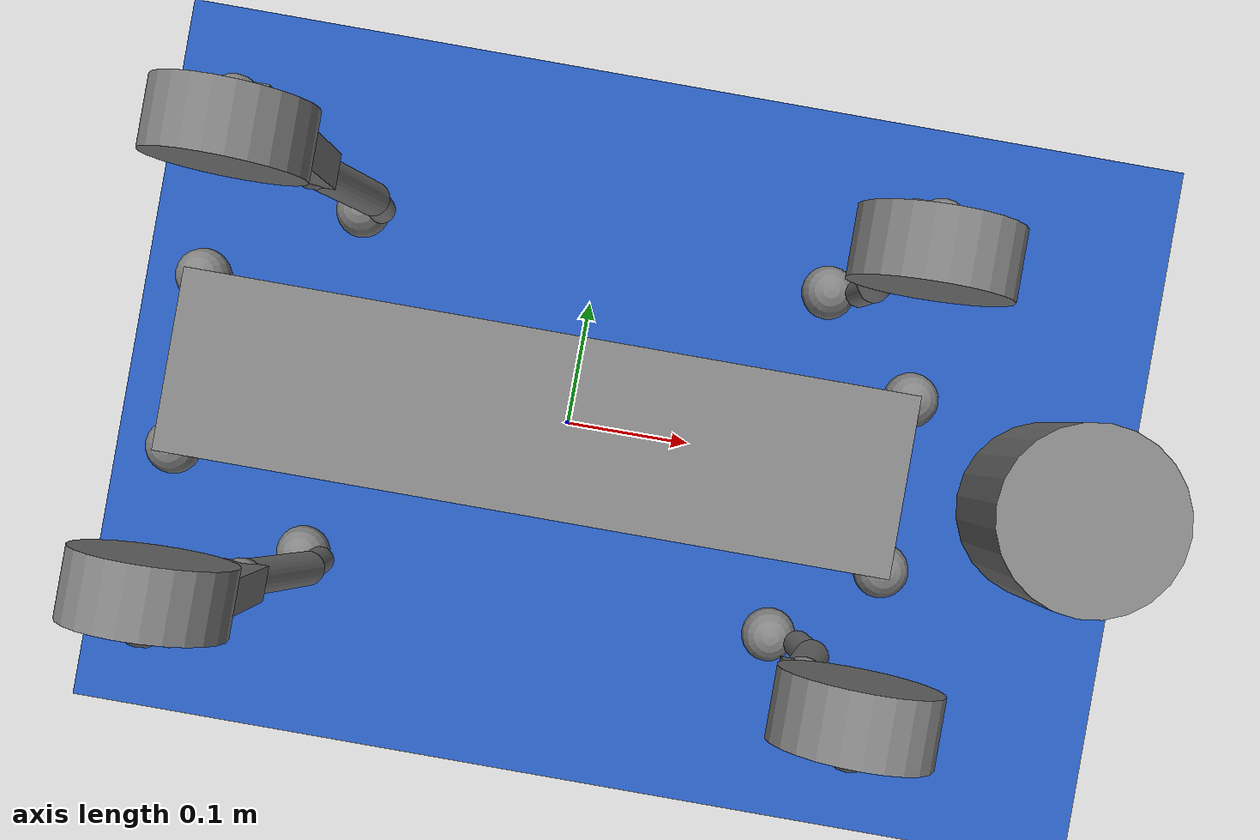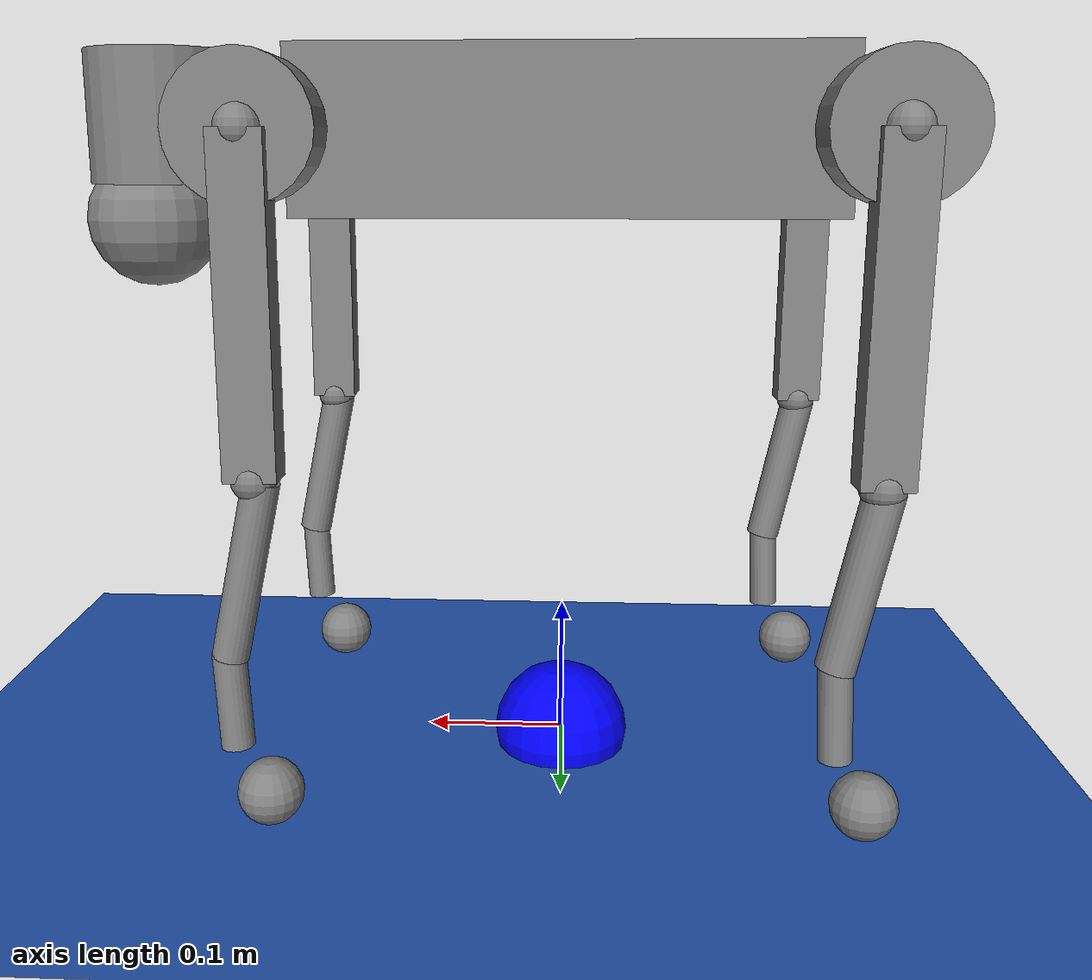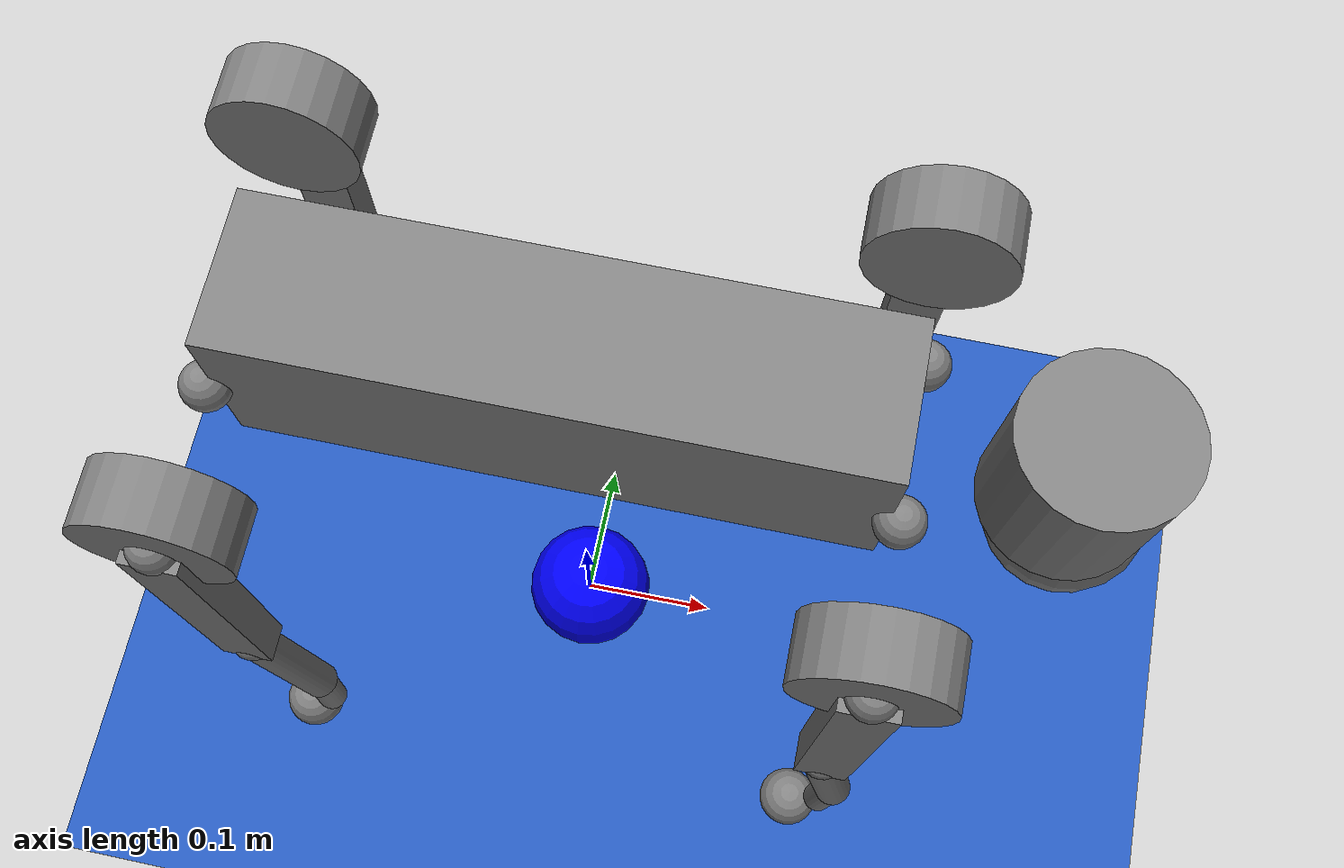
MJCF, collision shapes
<mujoco model="Quadruped">
    <include file="../../object/common.xml"/>

    <size memory="1M"/>

    <custom>
        <!-- agent -->
        <text name="task_transition" data="Stand"/>
        <numeric name="agent_planner" data="2 "/>
        <numeric name="agent_horizon" data="1.0"/>
        <numeric name="agent_timestep" data="0.01"/>
        <numeric name="sampling_spline_points" data="3"/>
        <numeric name="sampling_trajectories" data="60"/>
        <numeric name="sampling_exploration" data="0.04"/>
        <numeric name="gradient_spline_points" data="5"/>

        <!-- estimator -->
        <numeric name="estimator" data="0"/>
        <numeric name="estimator_sensor_start" data="9"/>
        <numeric name="estimator_number_sensor" data="21"/>
        <numeric name="estimator_timestep" data="0.005"/>
        <numeric name="batch_configuration_length" data="3"/>
        <numeric name="batch_scale_prior" data="1.0e-3"/>
    </custom>

    <visual>
        <headlight diffuse="0.6 0.6 0.6" ambient="0.3 0.3 0.3" specular="0 0 0"/>
        <global azimuth="-90"/>
    </visual>

    <statistic extent="1" center="0 0 .3"/>

    <worldbody>
        <light pos="0 0 1.5" dir="0 0 -1" diffuse="0.5 0.5 0.5" specular="0.3 0.3 0.3" directional="true"
               castshadow="false"/>
        <geom name="floor" size="0 0 0.1" pos="0 0 -0.01" type="plane" material="blue_grid"/>

        <body name="mocap[trunk]" mocap="true">
            <site name="mocap[trunk]" class="mocap_site" size="0.05"/>
        </body>
        <body name="mocap[head]" mocap="true">
            <site name="mocap[head]" class="mocap_site" size="0.05"/>
        </body>
        <body name="mocap[FR_hip]" mocap="true">
            <site name="mocap[FR_hip]" class="mocap_site"/>
        </body>
        <body name="mocap[FR_thigh]" mocap="true">
            <site name="mocap[FR_thigh]" class="mocap_site"/>
        </body>
        <body name="mocap[FR_calf]" mocap="true">
            <site name="mocap[FR_calf]" class="mocap_site"/>
        </body>
        <body name="mocap[FR_foot]" mocap="true">
            <site name="mocap[FR_foot]" class="mocap_site"/>
        </body>

        <body name="mocap[FL_hip]" mocap="true">
            <site name="mocap[FL_hip]" class="mocap_site"/>
        </body>
        <body name="mocap[FL_thigh]" mocap="true">
            <site name="mocap[FL_thigh]" class="mocap_site"/>
        </body>
        <body name="mocap[FL_calf]" mocap="true">
            <site name="mocap[FL_calf]" class="mocap_site"/>
        </body>
        <body name="mocap[FL_foot]" mocap="true">
            <site name="mocap[FL_foot]" class="mocap_site"/>
        </body>

        <body name="mocap[RR_hip]" mocap="true">
            <site name="mocap[RR_hip]" class="mocap_site"/>
        </body>
        <body name="mocap[RR_thigh]" mocap="true">
            <site name="mocap[RR_thigh]" class="mocap_site"/>
        </body>
        <body name="mocap[RR_calf]" mocap="true">
            <site name="mocap[RR_calf]" class="mocap_site"/>
        </body>
        <body name="mocap[RR_foot]" mocap="true">
            <site name="mocap[RR_foot]" class="mocap_site"/>
        </body>

        <body name="mocap[RL_hip]" mocap="true">
            <site name="mocap[RL_hip]" class="mocap_site"/>
        </body>
        <body name="mocap[RL_thigh]" mocap="true">
            <site name="mocap[RL_thigh]" class="mocap_site"/>
        </body>
        <body name="mocap[RL_calf]" mocap="true">
            <site name="mocap[RL_calf]" class="mocap_site"/>
        </body>
        <body name="mocap[RL_foot]" mocap="true">
            <site name="mocap[RL_foot]" class="mocap_site"/>
        </body>

    </worldbody>

    <default>
        <default class="mocap_site">
            <site type="sphere" size="0.027" rgba="0 0 1 1" group="2" material="target"/>
        </default>
        <default class="torque">
            <general gainprm="50" ctrllimited="true" ctrlrange="-1 1"/>
        </default>
        <default class="real_torque">
            <general gainprm="23.7" ctrllimited="true" ctrlrange="-1 1"/>
        </default>
        <default class="calf_torque">
            <general gainprm="45.43" ctrllimited="true" ctrlrange="-1 1"/>
        </default>
        <default class="task">
            <site rgba="1 0 0 1" size=".02" group="5"/>
        </default>
    </default>

    <include file="go2_motion.xml"/>

    <actuator>
        <general class="torque" name="FR_hip" joint="FR_hip_joint"/>
        <general class="torque" name="FR_thigh" joint="FR_thigh_joint"/>
        <general class="torque" name="FR_calf" joint="FR_calf_joint"/>
        <general class="torque" name="FL_hip" joint="FL_hip_joint"/>
        <general class="torque" name="FL_thigh" joint="FL_thigh_joint"/>
        <general class="torque" name="FL_calf" joint="FL_calf_joint"/>
        <general class="torque" name="RR_hip" joint="RR_hip_joint"/>
        <general class="torque" name="RR_thigh" joint="RR_thigh_joint"/>
        <general class="torque" name="RR_calf" joint="RR_calf_joint"/>
        <general class="torque" name="RL_hip" joint="RL_hip_joint"/>
        <general class="torque" name="RL_thigh" joint="RL_thigh_joint"/>
        <general class="torque" name="RL_calf" joint="RL_calf_joint"/>
    </actuator>

    <sensor>
        <user name="Qpos" dim="12" user="0 0 0 0 0 0 0 0 0 0 0 0" />
        <user name="FootHeight" dim="4" user="0 0 0 0" />
        <user name="Height" dim="1" user="0" />
        <user name="Position" dim="3" user="0 0 0" />
        <user name="Heading" dim="2" />
        <user name="YPR" dim="3" user="0 0 0" />
        <user name="Balance" dim="2"/>
        <user name="Effort" dim="12"/>
        <user name="Force" dim="1"/>

        <framepos      name="trace0" objtype="site" objname="head"/>
        <subtreecom    name="torso_subtreecom" body="trunk"/>
        <subtreelinvel name="torso_subtreelinvel" body="trunk"/>
    </sensor>

    <keyframe>
        <key name="home"
             qpos="0 0 0.26 1 0 0 0 -0.000341931 0.0181576 -0.0268335 0.00160968 0.0247957 -0.0270045 0.00191398 -0.033048 -0.0675298 -0.00199489 -0.0374747 -0.0681862"/>
    </keyframe>
</mujoco>

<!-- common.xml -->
<mujoco>

  <visual>
    <headlight ambient=".4 .4 .4" diffuse=".8 .8 .8" specular="0.1 0.1 0.1"/>
    <map znear=".01"/>
    <quality shadowsize="2048"/>
    <global elevation="-15"/>
  </visual>

  <asset>
    <texture name="blue_grid" type="2d" builtin="checker" rgb1=".02 .14 .44" rgb2=".27 .55 1" width="300" height="300" mark="edge" markrgb="1 1 1"/>
    <material name="blue_grid" texture="blue_grid" texrepeat="1 1" texuniform="true" reflectance=".2"/>

    <texture name="grey_grid" type="2d" builtin="checker" rgb1=".26 .26 .26" rgb2=".6 .6 .6" width="300" height="300" mark="edge" markrgb="1 1 1"/>
    <material name="grey_grid" texture="blue_grid" texrepeat="1 1" texuniform="true" reflectance=".2"/>
    <texture name="skybox" type="skybox" builtin="gradient" rgb1="1 1 1" rgb2="1 1 1" width="800" height="800"/>

    <material name="self" rgba=".7 .5 .3 1"/>
    <material name="self_default" rgba=".7 .5 .3 1"/>
    <material name="self_highlight" rgba="0 .5 .3 1"/>
    <material name="effector" rgba=".7 .4 .2 1"/>
    <material name="effector_default" rgba=".7 .4 .2 1"/>
    <material name="effector_highlight" rgba="0 .5 .3 1"/>
    <material name="decoration" rgba=".2 .6 .3 1"/>
    <material name="eye" rgba="0 .2 1 1"/>
    <material name="target" rgba=".6 .3 .3 1"/>
    <material name="target_default" rgba=".6 .3 .3 1"/>
    <material name="target_highlight" rgba=".6 .3 .3 .4"/>
    <material name="site" rgba=".5 .5 .5 .3"/>
  </asset>
</mujoco>

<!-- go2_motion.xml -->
<mujoco model="go2">
  <compiler angle="radian" meshdir="assets"/>

  <option cone="elliptic" impratio="10"/>

  <default>
    <default class="go2">
      <geom friction="0.6" margin="0.001" condim="1"/>
      <joint axis="0 1 0" damping="2" armature="0.01" frictionloss="0.2"/>
      <motor ctrlrange="-23.7 23.7"/>
      <default class="abduction">
        <joint axis="1 0 0" range="-1.0472 1.0472" limited="true"/>
      </default>
      <default class="hip">
        <default class="front_hip">
          <joint range="-2.4708 2.5907" ref="-0.9" limited="true"/>
        </default>
        <default class="back_hip">
          <joint range="-1.4236 3.6380" ref="-0.9" limited="true"/>
        </default>
      </default>
      <default class="knee">
        <joint range="-0.9227 0.9622" ref="1.8" limited="true"/>
        <motor ctrlrange="-45.43 45.43"/>
      </default>
      <default class="visual">
        <geom type="mesh" contype="0" conaffinity="0" group="2"/>
      </default>
      <default class="collision">
        <geom group="3"/>
        <default class="foot">
          <geom size="0.022" pos="-0.002 0 -0.213" priority="1" solimp="0.015 1 0.031" condim="6"
                friction="0.8 0.02 0.01"/>
        </default>
      </default>
    </default>
  </default>

  <asset>
    <material name="metal" rgba=".9 .95 .95 1"/>
    <material name="black" rgba="0 0 0 1"/>
    <material name="white" rgba="1 1 1 1"/>
    <material name="gray" rgba="0.671705 0.692426 0.774270 1"/>

    <mesh file="base_0.obj"/>
    <mesh file="base_1.obj"/>
    <mesh file="base_2.obj"/>
    <mesh file="base_3.obj"/>
    <mesh file="base_4.obj"/>
    <mesh file="hip_0.obj"/>
    <mesh file="hip_1.obj"/>
    <mesh file="thigh_0.obj"/>
    <mesh file="thigh_1.obj"/>
    <mesh file="thigh_mirror_0.obj"/>
    <mesh file="thigh_mirror_1.obj"/>
    <mesh file="calf_0.obj"/>
    <mesh file="calf_1.obj"/>
    <mesh file="calf_mirror_0.obj"/>
    <mesh file="calf_mirror_1.obj"/>
    <mesh file="foot.obj"/>
  </asset>

  <worldbody>
    <body name="trunk" pos="0 0 0.445" childclass="go2">
      <site name="trunk_site" type='sphere' size="0.03"/>
      <site name="head" pos="0.3 0 0" rgba="1 0 0 1" size="0.02" group="5"/>
      <inertial pos="0.021112 0 -0.005366" quat="-0.000543471 0.713435 -0.00173769 0.700719" mass="6.921"
                diaginertia="0.107027 0.0980771 0.0244531"/>
      <freejoint name="trunk"/>
      <geom mesh="base_0" material="black" class="visual"/>
      <geom mesh="base_1" material="black" class="visual"/>
      <geom mesh="base_2" material="black" class="visual"/>
      <geom mesh="base_3" material="white" class="visual"/>
      <geom mesh="base_4" material="gray" class="visual"/>
      <geom size="0.1881 0.04675 0.057" type="box" class="collision"/>
      <geom size="0.05 0.045" pos="0.285 0 0.01" type="cylinder" class="collision"/>
      <geom size="0.047" pos="0.293 0 -0.06" class="collision"/>
      <site name="imu" pos="-0.02557 0 0.04232"/>
      <body name="FR_hip" pos="0.1934 -0.0465 0">
        <site name="FR_hip_site" pos="0 0 0" type="sphere" size=".015"/>
        <inertial pos="-0.0054 -0.00194 -0.000105" quat="0.498237 0.505462 0.499245 0.497014" mass="0.678"
                  diaginertia="0.00088403 0.000596003 0.000479967"/>
        <joint name="FR_hip_joint" class="abduction"/>
        <geom mesh="hip_0" material="metal" class="visual" quat="4.63268e-05 1 0 0"/>
        <geom mesh="hip_1" material="gray" class="visual" quat="4.63268e-05 1 0 0"/>
        <geom size="0.046 0.02" pos="0 -0.08 0" quat="0.707107 0.707107 0 0" type="cylinder" class="collision"/>
        <body name="FR_thigh" pos="0 -0.0955 0">
          <site name="FR_thigh_site" pos="0 0 0" type="sphere" size=".015"/>
          <inertial pos="-0.00374 0.0223 -0.0327" quat="0.551623 -0.0200632 0.0847635 0.829533" mass="1.152"
                    diaginertia="0.00594973 0.00584149 0.000878787"/>
          <joint name="FR_thigh_joint" class="front_hip"/>
          <geom mesh="thigh_mirror_0" material="metal" class="visual"/>
          <geom mesh="thigh_mirror_1" material="gray" class="visual"/>
          <geom size="0.1065 0.01225 0.017" pos="0 0 -0.1065" quat="0.707107 0 0.707107 0" type="box" class="collision"/>
          <body name="FR_calf" pos="0 0 -0.213">
            <site name="FR_calf_site" pos="0 0 0" type="sphere" size=".015"/>
            <inertial pos="0.00629595 0.000622121 -0.141417" quat="0.703508 -0.00450087 0.00154099 0.710672"
                      mass="0.241352" diaginertia="0.0014901 0.00146356 5.31397e-05"/>
            <joint name="FR_calf_joint" class="knee"/>
            <geom mesh="calf_mirror_0" material="gray" class="visual"/>
            <geom mesh="calf_mirror_1" material="black" class="visual"/>
            <geom size="0.013 0.06" pos="0.01 0 -0.06" quat="0.995004 0 -0.0998334 0" type="cylinder" class="collision"/>
            <geom size="0.011 0.0325" pos="0.02 0 -0.148" quat="0.999688 0 0.0249974 0" type="cylinder" class="collision"/>
            <geom pos="0 0 -0.213" mesh="foot" class="visual" material="black"/>
            <geom name="FR_foot" class="foot"/>
            <site name="FR_foot_site" pos="-0.002 0 -0.213" type="sphere" size=".015"/>
          </body>
        </body>
      </body>
      <body name="FL_hip" pos="0.1934 0.0465 0">
        <site name="FL_hip_site" pos="0 0 0" type="sphere" size=".015"/>
        <inertial pos="-0.0054 0.00194 -0.000105" quat="0.497014 0.499245 0.505462 0.498237" mass="0.678"
                  diaginertia="0.00088403 0.000596003 0.000479967"/>
        <joint name="FL_hip_joint" class="abduction"/>
        <geom mesh="hip_0" material="metal" class="visual"/>
        <geom mesh="hip_1" material="gray" class="visual"/>
        <geom size="0.046 0.02" pos="0 0.08 0" quat="1 1 0 0" type="cylinder" class="collision"/>
        <body name="FL_thigh" pos="0 0.0955 0">
          <site name="FL_thigh_site" pos="0 0 0" type="sphere" size=".015"/>
          <inertial pos="-0.00374 -0.0223 -0.0327" quat="0.829533 0.0847635 -0.0200632 0.551623" mass="1.152"
                    diaginertia="0.00594973 0.00584149 0.000878787"/>
          <joint name="FL_thigh_joint" class="front_hip"/>
          <geom mesh="thigh_0" material="metal" class="visual"/>
          <geom mesh="thigh_1" material="gray" class="visual"/>
          <geom size="0.1065 0.01225 0.017" pos="0 0 -0.1065" quat="0.707107 0 0.707107 0" type="box" class="collision"/>
          <body name="FL_calf" pos="0 0 -0.213">
            <site name="FL_calf_site" pos="0 0 0" type="sphere" size=".015"/>
            <inertial pos="0.00629595 -0.000622121 -0.141417" quat="0.710672 0.00154099 -0.00450087 0.703508"
                      mass="0.241352" diaginertia="0.0014901 0.00146356 5.31397e-05"/>
            <joint name="FL_calf_joint" class="knee"/>
            <geom mesh="calf_0" material="gray" class="visual"/>
            <geom mesh="calf_1" material="black" class="visual"/>
            <geom size="0.012 0.06" pos="0.008 0 -0.06" quat="0.994493 0 -0.104807 0" type="cylinder" class="collision"/>
            <geom size="0.011 0.0325" pos="0.02 0 -0.148" quat="0.999688 0 0.0249974 0" type="cylinder" class="collision"/>
            <geom pos="0 0 -0.213" mesh="foot" class="visual" material="black"/>
            <geom name="FL_foot" class="foot"/>
            <site name="FL_foot_site" pos="-0.002 0 -0.213" type="sphere" size=".015"/>
          </body>
        </body>
      </body>
      <body name="RR_hip" pos="-0.1934 -0.0465 0">
        <site name="RR_hip_site" pos="0 0 0" type="sphere" size=".015"/>
        <inertial pos="0.0054 -0.00194 -0.000105" quat="0.499245 0.497014 0.498237 0.505462" mass="0.678"
                  diaginertia="0.00088403 0.000596003 0.000479967"/>
        <joint name="RR_hip_joint" class="abduction"/>
        <geom mesh="hip_0" material="metal" class="visual" quat="2.14617e-09 4.63268e-05 4.63268e-05 -1"/>
        <geom mesh="hip_1" material="gray" class="visual" quat="2.14617e-09 4.63268e-05 4.63268e-05 -1"/>
        <geom size="0.046 0.02" pos="0 -0.08 0" quat="0.707107 0.707107 0 0" type="cylinder" class="collision"/>
        <body name="RR_thigh" pos="0 -0.0955 0">
          <site name="RR_thigh_site" pos="0 0 0" type="sphere" size=".015"/>
          <inertial pos="-0.00374 0.0223 -0.0327" quat="0.551623 -0.0200632 0.0847635 0.829533" mass="1.152"
                    diaginertia="0.00594973 0.00584149 0.000878787"/>
          <joint name="RR_thigh_joint" class="back_hip"/>
          <geom mesh="thigh_mirror_0" material="metal" class="visual"/>
          <geom mesh="thigh_mirror_1" material="gray" class="visual"/>
          <geom size="0.1065 0.01225 0.017" pos="0 0 -0.1065" quat="0.707107 0 0.707107 0" type="box" class="collision"/>
          <body name="RR_calf" pos="0 0 -0.213">
            <site name="RR_calf_site" pos="0 0 0" type="sphere" size=".015"/>
            <inertial pos="0.00629595 0.000622121 -0.141417" quat="0.703508 -0.00450087 0.00154099 0.710672"
                      mass="0.241352" diaginertia="0.0014901 0.00146356 5.31397e-05"/>
            <joint name="RR_calf_joint" class="knee"/>
            <geom mesh="calf_mirror_0" material="gray" class="visual"/>
            <geom mesh="calf_mirror_1" material="black" class="visual"/>
            <geom size="0.013 0.06" pos="0.01 0 -0.06" quat="0.995004 0 -0.0998334 0" type="cylinder" class="collision"/>
            <geom size="0.011 0.0325" pos="0.02 0 -0.148" quat="0.999688 0 0.0249974 0" type="cylinder" class="collision"/>
            <geom pos="0 0 -0.213" mesh="foot" class="visual" material="black"/>
            <geom name="RR_foot" class="foot"/>
            <site name="RR_foot_site" pos="-0.002 0 -0.213" type="sphere" size=".015"/>
          </body>
        </body>
      </body>
      <body name="RL_hip" pos="-0.1934 0.0465 0">
        <site name="RL_hip_site" pos="0 0 0" type="sphere" size=".015"/>
        <inertial pos="0.0054 0.00194 -0.000105" quat="0.505462 0.498237 0.497014 0.499245" mass="0.678"
                  diaginertia="0.00088403 0.000596003 0.000479967"/>
        <joint name="RL_hip_joint" class="abduction"/>
        <geom mesh="hip_0" material="metal" class="visual" quat="4.63268e-05 0 1 0"/>
        <geom mesh="hip_1" material="gray" class="visual" quat="4.63268e-05 0 1 0"/>
        <geom size="0.046 0.02" pos="0 0.08 0" quat="0.707107 0.707107 0 0" type="cylinder" class="collision"/>
        <body name="RL_thigh" pos="0 0.0955 0">
          <site name="RL_thigh_site" pos="0 0 0" type="sphere" size=".015"/>
          <inertial pos="-0.00374 -0.0223 -0.0327" quat="0.829533 0.0847635 -0.0200632 0.551623" mass="1.152"
                    diaginertia="0.00594973 0.00584149 0.000878787"/>
          <joint name="RL_thigh_joint" class="back_hip"/>
          <geom mesh="thigh_0" material="metal" class="visual"/>
          <geom mesh="thigh_1" material="gray" class="visual"/>
          <geom size="0.1065 0.01225 0.017" pos="0 0 -0.1065" quat="0.707107 0 0.707107 0" type="box" class="collision"/>
          <body name="RL_calf" pos="0 0 -0.213">
            <site name="RL_calf_site" pos="0 0 0" type="sphere" size=".015"/>
            <inertial pos="0.00629595 -0.000622121 -0.141417" quat="0.710672 0.00154099 -0.00450087 0.703508"
                      mass="0.241352" diaginertia="0.0014901 0.00146356 5.31397e-05"/>
            <joint name="RL_calf_joint" class="knee"/>
            <geom mesh="calf_0" material="gray" class="visual"/>
            <geom mesh="calf_1" material="black" class="visual"/>
            <geom size="0.013 0.06" pos="0.01 0 -0.06" quat="0.995004 0 -0.0998334 0" type="cylinder" class="collision"/>
            <geom size="0.011 0.0325" pos="0.02 0 -0.148" quat="0.999688 0 0.0249974 0" type="cylinder" class="collision"/>
            <geom pos="0 0 -0.213" mesh="foot" class="visual" material="black"/>
            <geom name="RL_foot" class="foot"/>
            <site name="RL_foot_site" pos="-0.002 0 -0.213" type="sphere" size=".015"/>
          </body>
        </body>
      </body>
    </body>
  </worldbody>
</mujoco>
